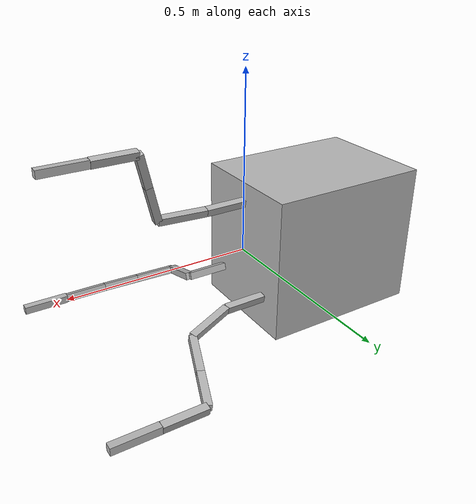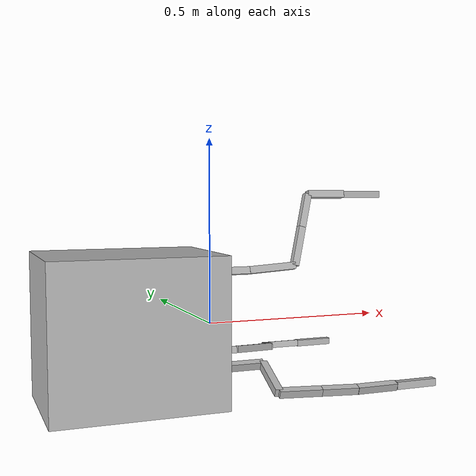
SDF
<?xml version="1.0" ?>
<sdf version="1.5">
<model name="four_bar_sdf">
<pose>0 0 0 0 0 0</pose>
<self_collide>true</self_collide>
<link name="linkROV">
<pose>-0.2286 0 0 0 0 0</pose>
<inertial>
<mass>1.0</mass>
<inertia>
<ixx>0.0227</ixx>
<iyy>0.0306</iyy>
<izz>0.0269</izz>
<ixy>0.0</ixy>
<ixz>0.0</ixz>
<iyz>0.0</iyz>
</inertia>
</inertial>
<collision name="linkROV_collision">
<geometry>
<box>
<size>0.4572 0.33805 0.39785</size>
</box>
</geometry>
</collision>
<visual name="linkROV_visual">
<geometry>
<box>
<size>0.4572 0.33805 0.39785</size>
</box>
</geometry>
<material>
<color rgba="0.3 0.3 0.3 1.0"/>
</material>
</visual>
</link>
<link name="arm1link1">
<pose>0.05750000 0.10000000 -0.10000000 -0.19757678 -0.00000000 0.00000000 </pose>
<inertial>
<mass>0.575</mass>
<inertia>
<ixx>3.8333e-05</ixx>
<iyy>6.5286e-04</iyy>
<izz>6.5286e-04</izz>
<ixy>0.0</ixy>
<ixz>0.0</ixz>
<iyz>0.0</iyz>
</inertia>
</inertial>
<collision name="arm1link1_collision">
<geometry>
<box>
<size>0.115 0.02 0.02</size>
</box>
</geometry>
</collision>
<visual name="arm1link1_visual">
<geometry>
<box>
<size>0.115 0.02 0.02</size>
</box>
</geometry>
<material>
<color rgba="0.3 0.3 0.3 1.0"/>
</material>
</visual>
</link>
<link name="arm1link2">
<pose>0.17971619 0.12616081 -0.10523709 -0.18300683 0.07488558 0.38415540 </pose>
<inertial>
<mass>0.700</mass>
<inertia>
<ixx>4.6667e-05</ixx>
<iyy>1.1667e-03</iyy>
<izz>1.1667e-03</izz>
<ixy>0.0</ixy>
<ixz>0.0</ixz>
<iyz>0.0</iyz>
</inertia>
</inertial>
<collision name="arm1link2_collision">
<geometry>
<box>
<size>0.140 0.02 0.02</size>
</box>
</geometry>
</collision>
<visual name="arm1link2_visual">
<geometry>
<box>
<size>0.140 0.02 0.02</size>
</box>
</geometry>
<material>
<color rgba="0.3 0.3 0.3 1.0"/>
</material>
</visual>
</link>
<link name="arm1link3">
<pose>0.26362743 0.20546862 -0.12111360 -0.06672910 0.18610576 1.22420614 </pose>
<inertial>
<mass>0.575</mass>
<inertia>
<ixx>3.8333e-05</ixx>
<iyy>6.5286e-04</iyy>
<izz>6.5286e-04</izz>
<ixy>0.0</ixy>
<ixz>0.0</ixz>
<iyz>0.0</iyz>
</inertia>
</inertial>
<collision name="arm1link3_collision">
<geometry>
<box>
<size>0.115 0.02 0.02</size>
</box>
</geometry>
</collision>
<visual name="arm1link3_visual">
<geometry>
<box>
<size>0.115 0.02 0.02</size>
</box>
</geometry>
<material>
<color rgba="0.3 0.3 0.3 1.0"/>
</material>
</visual>
</link>
<link name="arm1link4">
<pose>0.29951383 0.30483038 -0.14100468 -0.06738213 0.18610576 1.22420614 </pose>
<inertial>
<mass>0.500</mass>
<inertia>
<ixx>3.3333e-05</ixx>
<iyy>4.3333e-04</iyy>
<izz>4.3333e-04</izz>
<ixy>0.0</ixy>
<ixz>0.0</ixz>
<iyz>0.0</iyz>
</inertia>
</inertial>
<collision name="arm1link4_collision">
<geometry>
<box>
<size>0.100 0.02 0.02</size>
</box>
</geometry>
</collision>
<visual name="arm1link4_visual">
<geometry>
<box>
<size>0.100 0.02 0.02</size>
</box>
</geometry>
<material>
<color rgba="0.3 0.3 0.3 1.0"/>
</material>
</visual>
</link>
<link name="arm1link5">
<pose>0.37370516 0.35102592 -0.15021639 -0.19779452 -0.00069485 -0.00033451 </pose>
<inertial>
<mass>0.575</mass>
<inertia>
<ixx>3.8333e-05</ixx>
<iyy>6.5286e-04</iyy>
<izz>6.5286e-04</izz>
<ixy>0.0</ixy>
<ixz>0.0</ixz>
<iyz>0.0</iyz>
</inertia>
</inertial>
<collision name="arm1link5_collision">
<geometry>
<box>
<size>0.115 0.02 0.02</size>
</box>
</geometry>
</collision>
<visual name="arm1link5_visual">
<geometry>
<box>
<size>0.115 0.02 0.02</size>
</box>
</geometry>
<material>
<color rgba="0.3 0.3 0.3 1.0"/>
</material>
</visual>
</link>
<link name="arm1link6">
<pose>0.49120513 0.35098662 -0.15013475 0.00024483 -0.00069485 -0.00033451 </pose>
<inertial>
<mass>0.600</mass>
<inertia>
<ixx>4.0000e-05</ixx>
<iyy>7.4000e-04</iyy>
<izz>7.4000e-04</izz>
<ixy>0.0</ixy>
<ixz>0.0</ixz>
<iyz>0.0</iyz>
</inertia>
</inertial>
<collision name="arm1link6_collision">
<geometry>
<box>
<size>0.120 0.02 0.02</size>
</box>
</geometry>
</collision>
<visual name="arm1link6_visual">
<geometry>
<box>
<size>0.120 0.02 0.02</size>
</box>
</geometry>
<material>
<color rgba="0.3 0.3 0.3 1.0"/>
</material>
</visual>
</link>
<link name="arm2link1">
<pose>0.05750000 -0.10000000 -0.10000000 0.32685000 0.00000000 0.00000000 </pose>
<inertial>
<mass>0.575</mass>
<inertia>
<ixx>3.8333e-05</ixx>
<iyy>6.5286e-04</iyy>
<izz>6.5286e-04</izz>
<ixy>0.0</ixy>
<ixz>0.0</ixz>
<iyz>0.0</iyz>
</inertia>
</inertial>
<collision name="arm2link1_collision">
<geometry>
<box>
<size>0.115 0.02 0.02</size>
</box>
</geometry>
</collision>
<visual name="arm2link1_visual">
<geometry>
<box>
<size>0.115 0.02 0.02</size>
</box>
</geometry>
<material>
<color rgba="0.3 0.3 0.3 1.0"/>
</material>
</visual>
</link>
<link name="arm2link2">
<pose>0.10863000 -0.16602000 -0.12238000 -0.03083700 0.32545000 -1.66700000 </pose>
<inertial>
<mass>0.700</mass>
<inertia>
<ixx>4.6667e-05</ixx>
<iyy>1.1667e-03</iyy>
<izz>1.1667e-03</izz>
<ixy>0.0</ixy>
<ixz>0.0</ixz>
<iyz>0.0</iyz>
</inertia>
</inertial>
<collision name="arm2link2_collision">
<geometry>
<box>
<size>0.140 0.02 0.02</size>
</box>
</geometry>
</collision>
<visual name="arm2link2_visual">
<geometry>
<box>
<size>0.140 0.02 0.02</size>
</box>
</geometry>
<material>
<color rgba="0.3 0.3 0.3 1.0"/>
</material>
</visual>
</link>
<link name="arm2link3">
<pose>0.15954000 -0.23677000 -0.14637000 0.32570000 0.02789200 -0.08239000 </pose>
<inertial>
<mass>0.575</mass>
<inertia>
<ixx>3.8333e-05</ixx>
<iyy>6.5286e-04</iyy>
<izz>6.5286e-04</izz>
<ixy>0.0</ixy>
<ixz>0.0</ixz>
<iyz>0.0</iyz>
</inertia>
</inertial>
<collision name="arm2link3_collision">
<geometry>
<box>
<size>0.115 0.02 0.02</size>
</box>
</geometry>
</collision>
<visual name="arm2link3_visual">
<geometry>
<box>
<size>0.115 0.02 0.02</size>
</box>
</geometry>
<material>
<color rgba="0.3 0.3 0.3 1.0"/>
</material>
</visual>
</link>
<link name="arm2link4">
<pose>0.26664000 -0.24561000 -0.14936000 0.32447000 0.02789200 -0.08239000 </pose>
<inertial>
<mass>0.500</mass>
<inertia>
<ixx>3.3333e-05</ixx>
<iyy>4.3333e-04</iyy>
<izz>4.3333e-04</izz>
<ixy>0.0</ixy>
<ixz>0.0</ixz>
<iyz>0.0</iyz>
</inertia>
</inertial>
<collision name="arm2link4_collision">
<geometry>
<box>
<size>0.100 0.02 0.02</size>
</box>
</geometry>
</collision>
<visual name="arm2link4_visual">
<geometry>
<box>
<size>0.100 0.02 0.02</size>
</box>
</geometry>
<material>
<color rgba="0.3 0.3 0.3 1.0"/>
</material>
</visual>
</link>
<link name="arm2link5">
<pose>0.37395000 -0.24972000 -0.15076000 0.32563000 0.00005702 0.00016539 </pose>
<inertial>
<mass>0.575</mass>
<inertia>
<ixx>3.8333e-05</ixx>
<iyy>6.5286e-04</iyy>
<izz>6.5286e-04</izz>
<ixy>0.0</ixy>
<ixz>0.0</ixz>
<iyz>0.0</iyz>
</inertia>
</inertial>
<collision name="arm2link5_collision">
<geometry>
<box>
<size>0.115 0.02 0.02</size>
</box>
</geometry>
</collision>
<visual name="arm2link5_visual">
<geometry>
<box>
<size>0.115 0.02 0.02</size>
</box>
</geometry>
<material>
<color rgba="0.3 0.3 0.3 1.0"/>
</material>
</visual>
</link>
<link name="arm2link6">
<pose>0.49145000 -0.24970000 -0.15077000 0.00000413 0.00005702 0.00016539 </pose>
<inertial>
<mass>0.600</mass>
<inertia>
<ixx>4.0000e-05</ixx>
<iyy>7.4000e-04</iyy>
<izz>7.4000e-04</izz>
<ixy>0.0</ixy>
<ixz>0.0</ixz>
<iyz>0.0</iyz>
</inertia>
</inertial>
<collision name="arm2link6_collision">
<geometry>
<box>
<size>0.120 0.02 0.02</size>
</box>
</geometry>
</collision>
<visual name="arm2link6_visual">
<geometry>
<box>
<size>0.120 0.02 0.02</size>
</box>
</geometry>
<material>
<color rgba="0.3 0.3 0.3 1.0"/>
</material>
</visual>
</link>
<link name="arm3link1">
<pose>0.05750000 0.00000000 0.14142000 1.33790000 0.00000000 0.00000000 </pose>
<inertial>
<mass>0.575</mass>
<inertia>
<ixx>3.8333e-05</ixx>
<iyy>6.5286e-04</iyy>
<izz>6.5286e-04</izz>
<ixy>0.0</ixy>
<ixz>0.0</ixz>
<iyz>0.0</iyz>
</inertia>
</inertial>
<collision name="arm3link1_collision">
<geometry>
<box>
<size>0.115 0.02 0.02</size>
</box>
</geometry>
</collision>
<visual name="arm3link1_visual">
<geometry>
<box>
<size>0.115 0.02 0.02</size>
</box>
</geometry>
<material>
<color rgba="0.3 0.3 0.3 1.0"/>
</material>
</visual>
</link>
<link name="arm3link2">
<pose>0.18487000 0.00098561 0.14558000 1.33750000 -0.05939700 0.01410600 </pose>
<inertial>
<mass>0.700</mass>
<inertia>
<ixx>4.6667e-05</ixx>
<iyy>1.1667e-03</iyy>
<izz>1.1667e-03</izz>
<ixy>0.0</ixy>
<ixz>0.0</ixz>
<iyz>0.0</iyz>
</inertia>
</inertial>
<collision name="arm3link2_collision">
<geometry>
<box>
<size>0.140 0.02 0.02</size>
</box>
</geometry>
</collision>
<visual name="arm3link2_visual">
<geometry>
<box>
<size>0.140 0.02 0.02</size>
</box>
</geometry>
<material>
<color rgba="0.3 0.3 0.3 1.0"/>
</material>
</visual>
</link>
<link name="arm3link3">
<pose>0.27132000 0.01467800 0.20330000 0.88254000 -1.19890000 0.65379000 </pose>
<inertial>
<mass>0.575</mass>
<inertia>
<ixx>3.8333e-05</ixx>
<iyy>6.5286e-04</iyy>
<izz>6.5286e-04</izz>
<ixy>0.0</ixy>
<ixz>0.0</ixz>
<iyz>0.0</iyz>
</inertia>
</inertial>
<collision name="arm3link3_collision">
<geometry>
<box>
<size>0.115 0.02 0.02</size>
</box>
</geometry>
</collision>
<visual name="arm3link3_visual">
<geometry>
<box>
<size>0.115 0.02 0.02</size>
</box>
</geometry>
<material>
<color rgba="0.3 0.3 0.3 1.0"/>
</material>
</visual>
</link>
<link name="arm3link4">
<pose>0.30233000 0.03843300 0.30346000 0.88245000 -1.19890000 0.65379000 </pose>
<inertial>
<mass>0.500</mass>
<inertia>
<ixx>3.3333e-05</ixx>
<iyy>4.3333e-04</iyy>
<izz>4.3333e-04</izz>
<ixy>0.0</ixy>
<ixz>0.0</ixz>
<iyz>0.0</iyz>
</inertia>
</inertial>
<collision name="arm3link4_collision">
<geometry>
<box>
<size>0.100 0.02 0.02</size>
</box>
</geometry>
</collision>
<visual name="arm3link4_visual">
<geometry>
<box>
<size>0.100 0.02 0.02</size>
</box>
</geometry>
<material>
<color rgba="0.3 0.3 0.3 1.0"/>
</material>
</visual>
</link>
<link name="arm3link5">
<pose>0.37425000 0.04947100 0.35001000 1.33790000 0.00046073 -0.00019058 </pose>
<inertial>
<mass>0.575</mass>
<inertia>
<ixx>3.8333e-05</ixx>
<iyy>6.5286e-04</iyy>
<izz>6.5286e-04</izz>
<ixy>0.0</ixy>
<ixz>0.0</ixz>
<iyz>0.0</iyz>
</inertia>
</inertial>
<collision name="arm3link5_collision">
<geometry>
<box>
<size>0.115 0.02 0.02</size>
</box>
</geometry>
</collision>
<visual name="arm3link5_visual">
<geometry>
<box>
<size>0.115 0.02 0.02</size>
</box>
</geometry>
<material>
<color rgba="0.3 0.3 0.3 1.0"/>
</material>
</visual>
</link>
<link name="arm3link6">
<pose>0.49175000 0.04944900 0.34996000 -0.00015445 0.00046073 -0.00019058 </pose>
<inertial>
<mass>0.600</mass>
<inertia>
<ixx>4.0000e-05</ixx>
<iyy>7.4000e-04</iyy>
<izz>7.4000e-04</izz>
<ixy>0.0</ixy>
<ixz>0.0</ixz>
<iyz>0.0</iyz>
</inertia>
</inertial>
<collision name="arm3link6_collision">
<geometry>
<box>
<size>0.120 0.02 0.02</size>
</box>
</geometry>
</collision>
<visual name="arm3link6_visual">
<geometry>
<box>
<size>0.120 0.02 0.02</size>
</box>
</geometry>
<material>
<color rgba="0.3 0.3 0.3 1.0"/>
</material>
</visual>
</link>
<joint name="arm1_jointgrip" type="fixed">
<pose>0 0 0 0 0 0</pose>
<parent>world</parent>
<child>arm1link6</child>
</joint>
<joint name="arm1_joint1" type="revolute">
<pose>0 0 0 0 0 0</pose>
<parent>linkROV</parent>
<child>arm1link1</child>
<axis>
<xyz>1 0 0</xyz>
<dynamics>
<damping>0.05</damping>
<friction>0</friction>
<spring_reference>0</spring_reference>
<spring_stiffness>10.0</spring_stiffness>
</dynamics>
</axis>
</joint>
<joint name="arm1_joint2" type="revolute">
<pose>-0.07 0 0 0 0 0</pose>
<parent>arm1link1</parent>
<child>arm1link2</child>
<axis>
<xyz>0 0 1</xyz>
<dynamics>
<damping>0.05</damping>
<friction>0</friction>
<spring_reference>0</spring_reference>
<spring_stiffness>10.0</spring_stiffness>
</dynamics>
</axis>
</joint>
<joint name="arm1_joint3" type="revolute">
<pose>-0.0575 0 0 0 0 0</pose>
<parent>arm1link2</parent>
<child>arm1link3</child>
<axis>
<xyz>0 0 1</xyz>
<dynamics>
<damping>0.05</damping>
<friction>0</friction>
<spring_reference>0</spring_reference>
<spring_stiffness>10.0</spring_stiffness>
</dynamics>
</axis>
</joint>
<joint name="arm1_joint4" type="revolute">
<pose>-0.05 0 0 0 0 0</pose>
<parent>arm1link3</parent>
<child>arm1link4</child>
<axis>
<xyz>1 0 0</xyz>
<dynamics>
<damping>0.05</damping>
<friction>0</friction>
<spring_reference>0</spring_reference>
<spring_stiffness>10.0</spring_stiffness>
</dynamics>
</axis>
</joint>
<joint name="arm1_joint5" type="revolute">
<pose>-0.0575 0 0 0 0 0</pose>
<parent>arm1link4</parent>
<child>arm1link5</child>
<axis>
<xyz>0 0 1</xyz>
<dynamics>
<damping>0.05</damping>
<friction>0</friction>
<spring_reference>0</spring_reference>
<spring_stiffness>10.0</spring_stiffness>
</dynamics>
</axis>
</joint>
<joint name="arm1_joint6" type="revolute">
<pose>-0.06 0 0 0 0 0</pose>
<parent>arm1link5</parent>
<child>arm1link6</child>
<axis>
<xyz>1 0 0</xyz>
<dynamics>
<damping>0.05</damping>
<friction>0</friction>
<spring_reference>0</spring_reference>
<spring_stiffness>10.0</spring_stiffness>
</dynamics>
</axis>
</joint>
<joint name="arm2_jointgrip" type="fixed">
<pose>0 0 0 0 0 0</pose>
<parent>world</parent>
<child>arm2link6</child>
</joint>
<joint name="arm2_joint1" type="revolute">
<pose>0 0 0 0 0 0</pose>
<parent>linkROV</parent>
<child>arm2link1</child>
<axis>
<xyz>1 0 0</xyz>
<dynamics>
<damping>0.05</damping>
<friction>0</friction>
<spring_reference>0</spring_reference>
<spring_stiffness>10.0</spring_stiffness>
</dynamics>
</axis>
</joint>
<joint name="arm2_joint2" type="revolute">
<pose>-0.07 0 0 0 0 0</pose>
<parent>arm2link1</parent>
<child>arm2link2</child>
<axis>
<xyz>0 0 1</xyz>
<dynamics>
<damping>0.05</damping>
<friction>0</friction>
<spring_reference>0</spring_reference>
<spring_stiffness>10.0</spring_stiffness>
</dynamics>
</axis>
</joint>
<joint name="arm2_joint3" type="revolute">
<pose>-0.0575 0 0 0 0 0</pose>
<parent>arm2link2</parent>
<child>arm2link3</child>
<axis>
<xyz>0 0 1</xyz>
<dynamics>
<damping>0.05</damping>
<friction>0</friction>
<spring_reference>0</spring_reference>
<spring_stiffness>10.0</spring_stiffness>
</dynamics>
</axis>
</joint>
<joint name="arm2_joint4" type="revolute">
<pose>-0.05 0 0 0 0 0</pose>
<parent>arm2link3</parent>
<child>arm2link4</child>
<axis>
<xyz>1 0 0</xyz>
<dynamics>
<damping>0.05</damping>
<friction>0</friction>
<spring_reference>0</spring_reference>
<spring_stiffness>10.0</spring_stiffness>
</dynamics>
</axis>
</joint>
<joint name="arm2_joint5" type="revolute">
<pose>-0.0575 0 0 0 0 0</pose>
<parent>arm2link4</parent>
<child>arm2link5</child>
<axis>
<xyz>0 0 1</xyz>
<dynamics>
<damping>0.05</damping>
<friction>0</friction>
<spring_reference>0</spring_reference>
<spring_stiffness>10.0</spring_stiffness>
</dynamics>
</axis>
</joint>
<joint name="arm2_joint6" type="revolute">
<pose>-0.06 0 0 0 0 0</pose>
<parent>arm2link5</parent>
<child>arm2link6</child>
<axis>
<xyz>1 0 0</xyz>
<dynamics>
<damping>0.05</damping>
<friction>0</friction>
<spring_reference>0</spring_reference>
<spring_stiffness>10.0</spring_stiffness>
</dynamics>
</axis>
</joint>
<joint name="arm3_jointgrip" type="fixed">
<pose>0 0 0 0 0 0</pose>
<parent>world</parent>
<child>arm3link6</child>
</joint>
<joint name="arm3_joint1" type="revolute">
<pose>0 0 0 0 0 0</pose>
<parent>linkROV</parent>
<child>arm3link1</child>
<axis>
<xyz>1 0 0</xyz>
<dynamics>
<damping>0.05</damping>
<friction>0</friction>
<spring_reference>0</spring_reference>
<spring_stiffness>10.0</spring_stiffness>
</dynamics>
</axis>
</joint>
<joint name="arm3_joint2" type="revolute">
<pose>-0.07 0 0 0 0 0</pose>
<parent>arm3link1</parent>
<child>arm3link2</child>
<axis>
<xyz>0 0 1</xyz>
<dynamics>
<damping>0.05</damping>
<friction>0</friction>
<spring_reference>0</spring_reference>
<spring_stiffness>10.0</spring_stiffness>
</dynamics>
</axis>
</joint>
<joint name="arm3_joint3" type="revolute">
<pose>-0.0575 0 0 0 0 0</pose>
<parent>arm3link2</parent>
<child>arm3link3</child>
<axis>
<xyz>0 0 1</xyz>
<dynamics>
<damping>0.05</damping>
<friction>0</friction>
<spring_reference>0</spring_reference>
<spring_stiffness>10.0</spring_stiffness>
</dynamics>
</axis>
</joint>
<joint name="arm3_joint4" type="revolute">
<pose>-0.05 0 0 0 0 0</pose>
<parent>arm3link3</parent>
<child>arm3link4</child>
<axis>
<xyz>1 0 0</xyz>
<dynamics>
<damping>0.05</damping>
<friction>0</friction>
<spring_reference>0</spring_reference>
<spring_stiffness>10.0</spring_stiffness>
</dynamics>
</axis>
</joint>
<joint name="arm3_joint5" type="revolute">
<pose>-0.0575 0 0 0 0 0</pose>
<parent>arm3link4</parent>
<child>arm3link5</child>
<axis>
<xyz>0 0 1</xyz>
<dynamics>
<damping>0.05</damping>
<friction>0</friction>
<spring_reference>0</spring_reference>
<spring_stiffness>10.0</spring_stiffness>
</dynamics>
</axis>
</joint>
<joint name="arm3_joint6" type="revolute">
<pose>-0.06 0 0 0 0 0</pose>
<parent>arm3link5</parent>
<child>arm3link6</child>
<axis>
<xyz>1 0 0</xyz>
<dynamics>
<damping>0.05</damping>
<friction>0</friction>
<spring_reference>0</spring_reference>
<spring_stiffness>10.0</spring_stiffness>
</dynamics>
</axis>
</joint>
</model>
</sdf>
